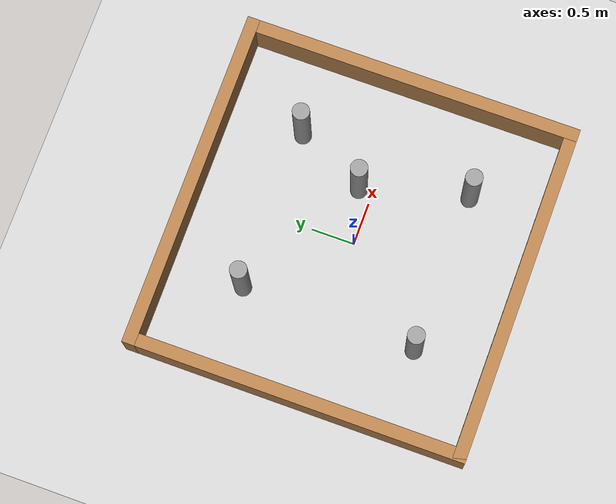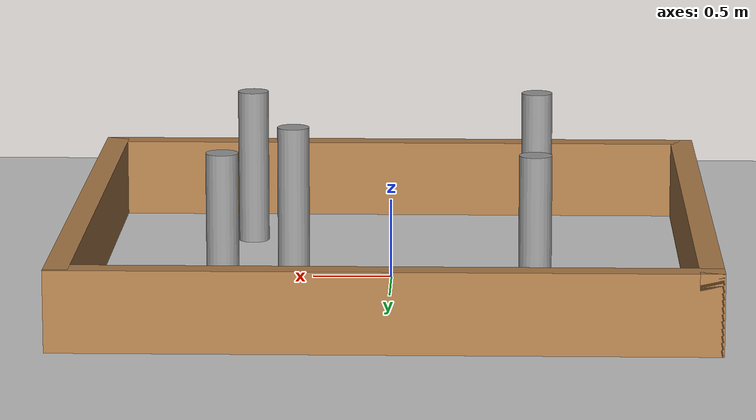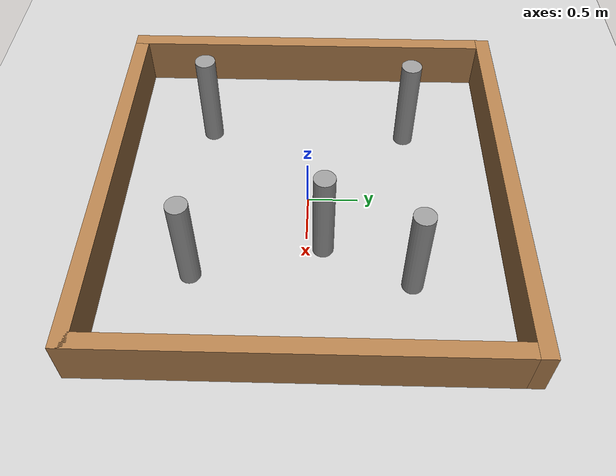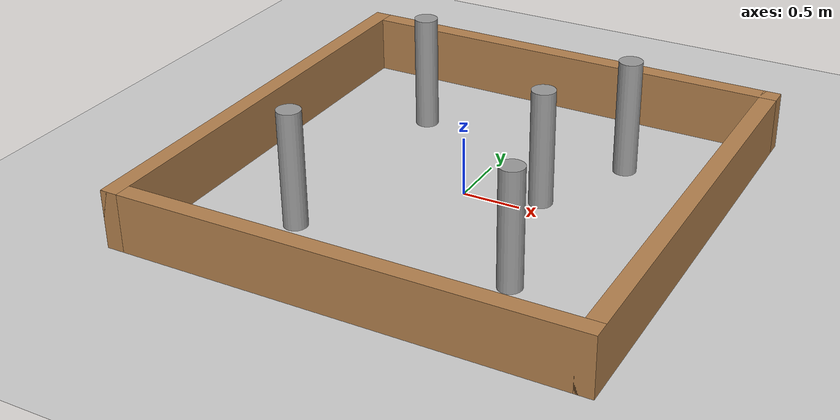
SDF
<sdf version="1.6">
 <world name="default">
  <light name="sun" type="directional">
   <pose>0 0 10 0 -0 0</pose>
   <diffuse>0.8 0.8 0.8 1</diffuse>
   <specular>0.2 0.2 0.2 1</specular>
   <attenuation>
    <range>1000</range>
    <constant>0.9</constant>
    <linear>0.01</linear>
    <quadratic>0.001</quadratic>
   </attenuation>
   <direction>-0.5 0.1 -0.9</direction>
  </light>
  <model name="ground_plane">
   <static>1</static>
   <link name="link">
    <collision name="collision">
     <geometry><plane><normal>0 0 1</normal><size>100 100</size></plane></geometry>
     <surface>
      <contact><collide_bitmask>65535</collide_bitmask></contact>
      <friction><ode><mu>100</mu><mu2>50</mu2></ode></friction>
     </surface>
    </collision>
    <visual name="visual">
     <cast_shadows>0</cast_shadows>
     <geometry><plane><normal>0 0 1</normal><size>100 100</size></plane></geometry>
     <material>
      <script><uri>file://media/materials/scripts/gazebo.material</uri><name>Gazebo/Grey</name></script>
     </material>
    </visual>
   </link>
  </model>
  <gravity>0 0 -9.8</gravity>
  <magnetic_field>6e-06 2.3e-05 -4.2e-05</magnetic_field>
  <atmosphere type="adiabatic"/>
  <physics name="default_physics" default="0" type="ode">
   <max_step_size>0.001</max_step_size>
   <real_time_factor>1</real_time_factor>
   <real_time_update_rate>1000</real_time_update_rate>
  </physics>
  <scene><ambient>0.4 0.4 0.4 1</ambient><background>0.7 0.7 0.7 1</background><shadows>1</shadows></scene>
  <audio><device>default</device></audio>
  <spherical_coordinates>
   <surface_model>EARTH_WGS84</surface_model>
   <latitude_deg>0</latitude_deg>
   <longitude_deg>0</longitude_deg>
   <elevation>0</elevation>
   <heading_deg>0</heading_deg>
  </spherical_coordinates>
  <model name="turtlebot3_square">
   <link name="Wall_0">
    <pose>0 1.925 0 0 -0 0</pose>
    <visual name="Wall_0_Visual">
     <pose>0 0 0.25 0 -0 0</pose>
     <geometry><box><size>4 0.15 0.5</size></box></geometry>
     <material>
      <script><uri>file://media/materials/scripts/gazebo.material</uri><name>Gazebo/Wood</name></script>
      <ambient>1 1 1 1</ambient>
     </material>
    </visual>
    <collision name="Wall_0_Collision">
     <pose>0 0 0.25 0 -0 0</pose>
     <geometry><box><size>4 0.15 0.5</size></box></geometry>
     <surface>
      <friction>
       <ode><mu>1</mu><mu2>1</mu2><fdir1>0 0 0</fdir1><slip1>0</slip1><slip2>0</slip2></ode>
       <torsional>
        <coefficient>1</coefficient>
        <patch_radius>0</patch_radius>
        <surface_radius>0</surface_radius>
        <use_patch_radius>1</use_patch_radius>
        <ode><slip>0</slip></ode>
       </torsional>
      </friction>
      <bounce><restitution_coefficient>0</restitution_coefficient><threshold>1e+06</threshold></bounce>
      <contact>
       <collide_without_contact>0</collide_without_contact>
       <collide_without_contact_bitmask>1</collide_without_contact_bitmask>
       <collide_bitmask>1</collide_bitmask>
       <ode>
        <soft_cfm>0</soft_cfm>
        <soft_erp>0.2</soft_erp>
        <kp>1e+13</kp>
        <kd>1</kd>
        <max_vel>0.01</max_vel>
        <min_depth>0</min_depth>
       </ode>
       <bullet>
        <split_impulse>1</split_impulse>
        <split_impulse_penetration_threshold>-0.01</split_impulse_penetration_threshold>
        <soft_cfm>0</soft_cfm>
        <soft_erp>0.2</soft_erp>
        <kp>1e+13</kp>
        <kd>1</kd>
       </bullet>
      </contact>
     </surface>
    </collision>
   </link>
   <link name="Wall_2">
    <pose>-1.925 0 0 0 0 -1.5708</pose>
    <visual name="Wall_2_Visual">
     <pose>0 0 0.25 0 -0 0</pose>
     <geometry><box><size>4 0.15 0.5</size></box></geometry>
     <material>
      <script><uri>file://media/materials/scripts/gazebo.material</uri><name>Gazebo/Wood</name></script>
      <ambient>1 1 1 1</ambient>
     </material>
    </visual>
    <collision name="Wall_2_Collision">
     <pose>0 0 0.25 0 -0 0</pose>
     <geometry><box><size>4 0.15 0.5</size></box></geometry>
     <surface>
      <friction>
       <ode><mu>1</mu><mu2>1</mu2><fdir1>0 0 0</fdir1><slip1>0</slip1><slip2>0</slip2></ode>
       <torsional>
        <coefficient>1</coefficient>
        <patch_radius>0</patch_radius>
        <surface_radius>0</surface_radius>
        <use_patch_radius>1</use_patch_radius>
        <ode><slip>0</slip></ode>
       </torsional>
      </friction>
      <bounce><restitution_coefficient>0</restitution_coefficient><threshold>1e+06</threshold></bounce>
      <contact>
       <collide_without_contact>0</collide_without_contact>
       <collide_without_contact_bitmask>1</collide_without_contact_bitmask>
       <collide_bitmask>1</collide_bitmask>
       <ode>
        <soft_cfm>0</soft_cfm>
        <soft_erp>0.2</soft_erp>
        <kp>1e+13</kp>
        <kd>1</kd>
        <max_vel>0.01</max_vel>
        <min_depth>0</min_depth>
       </ode>
       <bullet>
        <split_impulse>1</split_impulse>
        <split_impulse_penetration_threshold>-0.01</split_impulse_penetration_threshold>
        <soft_cfm>0</soft_cfm>
        <soft_erp>0.2</soft_erp>
        <kp>1e+13</kp>
        <kd>1</kd>
       </bullet>
      </contact>
     </surface>
    </collision>
   </link>
   <link name="Wall_3">
    <pose>0 -1.925 0 0 -0 0</pose>
    <visual name="Wall_3_Visual">
     <pose>0 0 0.25 0 -0 0</pose>
     <geometry><box><size>4 0.15 0.5</size></box></geometry>
     <material>
      <script><uri>file://media/materials/scripts/gazebo.material</uri><name>Gazebo/Wood</name></script>
      <ambient>1 1 1 1</ambient>
     </material>
    </visual>
    <collision name="Wall_3_Collision">
     <pose>0 0 0.25 0 -0 0</pose>
     <geometry><box><size>4 0.15 0.5</size></box></geometry>
     <surface>
      <friction>
       <ode><mu>1</mu><mu2>1</mu2><fdir1>0 0 0</fdir1><slip1>0</slip1><slip2>0</slip2></ode>
       <torsional>
        <coefficient>1</coefficient>
        <patch_radius>0</patch_radius>
        <surface_radius>0</surface_radius>
        <use_patch_radius>1</use_patch_radius>
        <ode><slip>0</slip></ode>
       </torsional>
      </friction>
      <bounce><restitution_coefficient>0</restitution_coefficient><threshold>1e+06</threshold></bounce>
      <contact>
       <collide_without_contact>0</collide_without_contact>
       <collide_without_contact_bitmask>1</collide_without_contact_bitmask>
       <collide_bitmask>1</collide_bitmask>
       <ode>
        <soft_cfm>0</soft_cfm>
        <soft_erp>0.2</soft_erp>
        <kp>1e+13</kp>
        <kd>1</kd>
        <max_vel>0.01</max_vel>
        <min_depth>0</min_depth>
       </ode>
       <bullet>
        <split_impulse>1</split_impulse>
        <split_impulse_penetration_threshold>-0.01</split_impulse_penetration_threshold>
        <soft_cfm>0</soft_cfm>
        <soft_erp>0.2</soft_erp>
        <kp>1e+13</kp>
        <kd>1</kd>
       </bullet>
      </contact>
     </surface>
    </collision>
   </link>
   <link name="Wall_4">
    <pose>1.925 0 0 0 -0 1.5708</pose>
    <visual name="Wall_4_Visual">
     <pose>0 0 0.25 0 -0 0</pose>
     <geometry><box><size>4 0.15 0.5</size></box></geometry>
     <material>
      <script><uri>file://media/materials/scripts/gazebo.material</uri><name>Gazebo/Wood</name></script>
      <ambient>1 1 1 1</ambient>
     </material>
    </visual>
    <collision name="Wall_4_Collision">
     <pose>0 0 0.25 0 -0 0</pose>
     <geometry><box><size>4 0.15 0.5</size></box></geometry>
     <surface>
      <friction>
       <ode><mu>1</mu><mu2>1</mu2><fdir1>0 0 0</fdir1><slip1>0</slip1><slip2>0</slip2></ode>
       <torsional>
        <coefficient>1</coefficient>
        <patch_radius>0</patch_radius>
        <surface_radius>0</surface_radius>
        <use_patch_radius>1</use_patch_radius>
        <ode><slip>0</slip></ode>
       </torsional>
      </friction>
      <bounce><restitution_coefficient>0</restitution_coefficient><threshold>1e+06</threshold></bounce>
      <contact>
       <collide_without_contact>0</collide_without_contact>
       <collide_without_contact_bitmask>1</collide_without_contact_bitmask>
       <collide_bitmask>1</collide_bitmask>
       <ode>
        <soft_cfm>0</soft_cfm>
        <soft_erp>0.2</soft_erp>
        <kp>1e+13</kp>
        <kd>1</kd>
        <max_vel>0.01</max_vel>
        <min_depth>0</min_depth>
       </ode>
       <bullet>
        <split_impulse>1</split_impulse>
        <split_impulse_penetration_threshold>-0.01</split_impulse_penetration_threshold>
        <soft_cfm>0</soft_cfm>
        <soft_erp>0.2</soft_erp>
        <kp>1e+13</kp>
        <kd>1</kd>
       </bullet>
      </contact>
     </surface>
    </collision>
   </link>
   <link name="link_0">
    <inertial>
     <mass>1</mass>
     <inertia><ixx>0.145833</ixx><ixy>0</ixy><ixz>0</ixz><iyy>0.145833</iyy><iyz>0</iyz><izz>0.125</izz></inertia>
    </inertial>
    <pose>0.615566 -0.041509 0.5 0 -0 0</pose>
    <visual name="visual">
     <pose>0 0.2 0 0 -0 0</pose>
     <geometry><cylinder><radius>0.1</radius><length>1</length></cylinder></geometry>
     <material>
      <lighting>1</lighting>
      <script><uri>file://media/materials/scripts/gazebo.material</uri><name>Gazebo/Grey</name></script>
      <shader type="vertex"><normal_map>__default__</normal_map></shader>
      <ambient>0.3 0.3 0.3 1</ambient>
      <diffuse>0.7 0.7 0.7 1</diffuse>
      <specular>0.01 0.01 0.01 1</specular>
      <emissive>0 0 0 1</emissive>
     </material>
    </visual>
    <collision name="collision">
     <pose>0 0.2 0 0 -0 0</pose>
     <geometry><cylinder><radius>0.1</radius><length>1</length></cylinder></geometry>
     <surface>
      <friction>
       <ode><mu>1</mu><mu2>1</mu2><fdir1>0 0 0</fdir1><slip1>0</slip1><slip2>0</slip2></ode>
       <torsional>
        <coefficient>1</coefficient>
        <patch_radius>0</patch_radius>
        <surface_radius>0</surface_radius>
        <use_patch_radius>1</use_patch_radius>
        <ode><slip>0</slip></ode>
       </torsional>
      </friction>
      <bounce><restitution_coefficient>0</restitution_coefficient><threshold>1e+06</threshold></bounce>
      <contact>
       <collide_without_contact>0</collide_without_contact>
       <collide_without_contact_bitmask>1</collide_without_contact_bitmask>
       <collide_bitmask>1</collide_bitmask>
       <ode>
        <soft_cfm>0</soft_cfm>
        <soft_erp>0.2</soft_erp>
        <kp>1e+13</kp>
        <kd>1</kd>
        <max_vel>0.01</max_vel>
        <min_depth>0</min_depth>
       </ode>
       <bullet>
        <split_impulse>1</split_impulse>
        <split_impulse_penetration_threshold>-0.01</split_impulse_penetration_threshold>
        <soft_cfm>0</soft_cfm>
        <soft_erp>0.2</soft_erp>
        <kp>1e+13</kp>
        <kd>1</kd>
       </bullet>
      </contact>
     </surface>
    </collision>
   </link>
   <link name="link_0_0">
    <inertial>
     <mass>1</mass>
     <inertia><ixx>0.145833</ixx><ixy>0</ixy><ixz>0</ixz><iyy>0.145833</iyy><iyz>0</iyz><izz>0.125</izz></inertia>
    </inertial>
    <pose>-0.929049 -1.04922 0.5 0 -0 0</pose>
    <visual name="visual">
     <geometry><cylinder><radius>0.1</radius><length>1</length></cylinder></geometry>
     <material>
      <lighting>1</lighting>
      <script><uri>file://media/materials/scripts/gazebo.material</uri><name>Gazebo/Grey</name></script>
      <shader type="vertex"><normal_map>__default__</normal_map></shader>
      <ambient>0.3 0.3 0.3 1</ambient>
      <diffuse>0.7 0.7 0.7 1</diffuse>
      <specular>0.01 0.01 0.01 1</specular>
      <emissive>0 0 0 1</emissive>
     </material>
    </visual>
    <collision name="collision">
     <geometry><cylinder><radius>0.1</radius><length>1</length></cylinder></geometry>
     <surface>
      <friction>
       <ode><mu>1</mu><mu2>1</mu2><fdir1>0 0 0</fdir1><slip1>0</slip1><slip2>0</slip2></ode>
       <torsional>
        <coefficient>1</coefficient>
        <patch_radius>0</patch_radius>
        <surface_radius>0</surface_radius>
        <use_patch_radius>1</use_patch_radius>
        <ode><slip>0</slip></ode>
       </torsional>
      </friction>
      <bounce><restitution_coefficient>0</restitution_coefficient><threshold>1e+06</threshold></bounce>
      <contact>
       <collide_without_contact>0</collide_without_contact>
       <collide_without_contact_bitmask>1</collide_without_contact_bitmask>
       <collide_bitmask>1</collide_bitmask>
       <ode>
        <soft_cfm>0</soft_cfm>
        <soft_erp>0.2</soft_erp>
        <kp>1e+13</kp>
        <kd>1</kd>
        <max_vel>0.01</max_vel>
        <min_depth>0</min_depth>
       </ode>
       <bullet>
        <split_impulse>1</split_impulse>
        <split_impulse_penetration_threshold>-0.01</split_impulse_penetration_threshold>
        <soft_cfm>0</soft_cfm>
        <soft_erp>0.2</soft_erp>
        <kp>1e+13</kp>
        <kd>1</kd>
       </bullet>
      </contact>
     </surface>
    </collision>
   </link>
   <link name="link_1">
    <inertial>
     <mass>1</mass>
     <inertia><ixx>0.145833</ixx><ixy>0</ixy><ixz>0</ixz><iyy>0.145833</iyy><iyz>0</iyz><izz>0.125</izz></inertia>
    </inertial>
    <pose>0.94097 -1.06584 0.5 0 -0 0</pose>
    <visual name="visual">
     <geometry><cylinder><radius>0.1</radius><length>1</length></cylinder></geometry>
     <material>
      <lighting>1</lighting>
      <script><uri>file://media/materials/scripts/gazebo.material</uri><name>Gazebo/Grey</name></script>
      <shader type="vertex"><normal_map>__default__</normal_map></shader>
      <ambient>0.3 0.3 0.3 1</ambient>
      <diffuse>0.7 0.7 0.7 1</diffuse>
      <specular>0.01 0.01 0.01 1</specular>
      <emissive>0 0 0 1</emissive>
     </material>
    </visual>
    <collision name="collision">
     <geometry><cylinder><radius>0.1</radius><length>1</length></cylinder></geometry>
     <surface>
      <friction>
       <ode><mu>1</mu><mu2>1</mu2><fdir1>0 0 0</fdir1><slip1>0</slip1><slip2>0</slip2></ode>
       <torsional>
        <coefficient>1</coefficient>
        <patch_radius>0</patch_radius>
        <surface_radius>0</surface_radius>
        <use_patch_radius>1</use_patch_radius>
        <ode><slip>0</slip></ode>
       </torsional>
      </friction>
      <bounce><restitution_coefficient>0</restitution_coefficient><threshold>1e+06</threshold></bounce>
      <contact>
       <collide_without_contact>0</collide_without_contact>
       <collide_without_contact_bitmask>1</collide_without_contact_bitmask>
       <collide_bitmask>1</collide_bitmask>
       <ode>
        <soft_cfm>0</soft_cfm>
        <soft_erp>0.2</soft_erp>
        <kp>1e+13</kp>
        <kd>1</kd>
        <max_vel>0.01</max_vel>
        <min_depth>0</min_depth>
       </ode>
       <bullet>
        <split_impulse>1</split_impulse>
        <split_impulse_penetration_threshold>-0.01</split_impulse_penetration_threshold>
        <soft_cfm>0</soft_cfm>
        <soft_erp>0.2</soft_erp>
        <kp>1e+13</kp>
        <kd>1</kd>
       </bullet>
      </contact>
     </surface>
    </collision>
   </link>
   <link name="link_2">
    <inertial>
     <mass>1</mass>
     <inertia><ixx>0.145833</ixx><ixy>0</ixy><ixz>0</ixz><iyy>0.145833</iyy><iyz>0</iyz><izz>0.125</izz></inertia>
    </inertial>
    <pose>-0.897982 1.00773 0.5 0 -0 0</pose>
    <visual name="visual">
     <geometry><cylinder><radius>0.1</radius><length>1</length></cylinder></geometry>
     <material>
      <lighting>1</lighting>
      <script><uri>file://media/materials/scripts/gazebo.material</uri><name>Gazebo/Grey</name></script>
      <shader type="vertex"><normal_map>__default__</normal_map></shader>
      <ambient>0.3 0.3 0.3 1</ambient>
      <diffuse>0.7 0.7 0.7 1</diffuse>
      <specular>0.01 0.01 0.01 1</specular>
      <emissive>0 0 0 1</emissive>
     </material>
    </visual>
    <collision name="collision">
     <geometry><cylinder><radius>0.1</radius><length>1</length></cylinder></geometry>
     <surface>
      <friction>
       <ode><mu>1</mu><mu2>1</mu2><fdir1>0 0 0</fdir1><slip1>0</slip1><slip2>0</slip2></ode>
       <torsional>
        <coefficient>1</coefficient>
        <patch_radius>0</patch_radius>
        <surface_radius>0</surface_radius>
        <use_patch_radius>1</use_patch_radius>
        <ode><slip>0</slip></ode>
       </torsional>
      </friction>
      <bounce><restitution_coefficient>0</restitution_coefficient><threshold>1e+06</threshold></bounce>
      <contact>
       <collide_without_contact>0</collide_without_contact>
       <collide_without_contact_bitmask>1</collide_without_contact_bitmask>
       <collide_bitmask>1</collide_bitmask>
       <ode>
        <soft_cfm>0</soft_cfm>
        <soft_erp>0.2</soft_erp>
        <kp>1e+13</kp>
        <kd>1</kd>
        <max_vel>0.01</max_vel>
        <min_depth>0</min_depth>
       </ode>
       <bullet>
        <split_impulse>1</split_impulse>
        <split_impulse_penetration_threshold>-0.01</split_impulse_penetration_threshold>
        <soft_cfm>0</soft_cfm>
        <soft_erp>0.2</soft_erp>
        <kp>1e+13</kp>
        <kd>1</kd>
       </bullet>
      </contact>
     </surface>
    </collision>
   </link>
   <link name="link_3">
    <inertial>
     <mass>1</mass>
     <inertia><ixx>0.145833</ixx><ixy>0</ixy><ixz>0</ixz><iyy>0.145833</iyy><iyz>0</iyz><izz>0.125</izz></inertia>
    </inertial>
    <pose>1.00768 0.981126 0.5 0 -0 0</pose>
    <visual name="visual">
     <geometry><cylinder><radius>0.1</radius><length>1</length></cylinder></geometry>
     <material>
      <lighting>1</lighting>
      <script><uri>file://media/materials/scripts/gazebo.material</uri><name>Gazebo/Grey</name></script>
      <shader type="vertex"><normal_map>__default__</normal_map></shader>
      <ambient>0.3 0.3 0.3 1</ambient>
      <diffuse>0.7 0.7 0.7 1</diffuse>
      <specular>0.01 0.01 0.01 1</specular>
      <emissive>0 0 0 1</emissive>
     </material>
    </visual>
    <collision name="collision">
     <geometry><cylinder><radius>0.1</radius><length>1</length></cylinder></geometry>
     <surface>
      <friction>
       <ode><mu>1</mu><mu2>1</mu2><fdir1>0 0 0</fdir1><slip1>0</slip1><slip2>0</slip2></ode>
       <torsional>
        <coefficient>1</coefficient>
        <patch_radius>0</patch_radius>
        <surface_radius>0</surface_radius>
        <use_patch_radius>1</use_patch_radius>
        <ode><slip>0</slip></ode>
       </torsional>
      </friction>
      <bounce><restitution_coefficient>0</restitution_coefficient><threshold>1e+06</threshold></bounce>
      <contact>
       <collide_without_contact>0</collide_without_contact>
       <collide_without_contact_bitmask>1</collide_without_contact_bitmask>
       <collide_bitmask>1</collide_bitmask>
       <ode>
        <soft_cfm>0</soft_cfm>
        <soft_erp>0.2</soft_erp>
        <kp>1e+13</kp>
        <kd>1</kd>
        <max_vel>0.01</max_vel>
        <min_depth>0</min_depth>
       </ode>
       <bullet>
        <split_impulse>1</split_impulse>
        <split_impulse_penetration_threshold>-0.01</split_impulse_penetration_threshold>
        <soft_cfm>0</soft_cfm>
        <soft_erp>0.2</soft_erp>
        <kp>1e+13</kp>
        <kd>1</kd>
       </bullet>
      </contact>
     </surface>
    </collision>
   </link>
   <static>1</static>
   <pose>-0.001556 0.001393 0 0 -0 0</pose>
  </model>
 </world>
</sdf>
